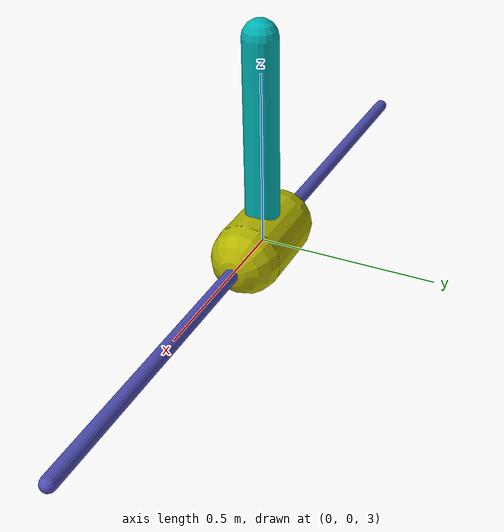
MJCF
<mujoco model="inverted pendulum">
	<compiler inertiafromgeom="true" coordinate="local"/>
	<default>
		<joint armature="0" damping="1" limited="true"/>
		<geom contype="0" friction="1 0.1 0.1" rgba="0.7 0.7 0 1"/>
		<tendon/>
		<motor ctrlrange="-3 3"/>
	</default>
	<option gravity="0 0 -9.81" integrator="RK4" timestep="0.02"/>
	<size nstack="3000"/>
	<worldbody>
		<geom conaffinity="1" condim="3" name="floor" pos="0 0 0" rgba="0.8 0.9 0.8 1" size="40 40 40" type="plane" material="MatPlane"/>
		<geom name="rail" pos="0 0 3" quat="0.707 0 0.707 0" rgba="0.3 0.3 0.7 1" size="0.02 1" type="capsule"/>
		<body name="cart" pos="0 0 3">
			<joint axis="1 0 0" limited="true" name="slider" pos="0 0 0" range="-1 1" type="slide"/>
			<geom name="cart" pos="0 0 0" quat="0.707 0 0.707 0" size="0.1 0.1" type="capsule"/>
			<body name="pole" pos="0 0 0">
				<joint axis="0 1 0" name="hinge" pos="0 0 0" range="-90 90" type="hinge"/>
				<geom fromto="0 0 0 0.001 0 0.6" name="cpole" rgba="0 0.7 0.7 1" size="0.049 0.3" type="capsule"/>
			</body>
		</body>
	</worldbody>
	<actuator>
		<motor gear="100" joint="slider" name="slide"/>
	</actuator>
	<asset>
		<texture builtin="checker" height="100" name="texplane" rgb1="0 0 0" rgb2="0.8 0.8 0.8" type="2d" width="100"/>
		<material name="MatPlane" reflectance="0.5" shininess="1" specular="1" texrepeat="60 60" texture="texplane"/>
	</asset>
</mujoco>
